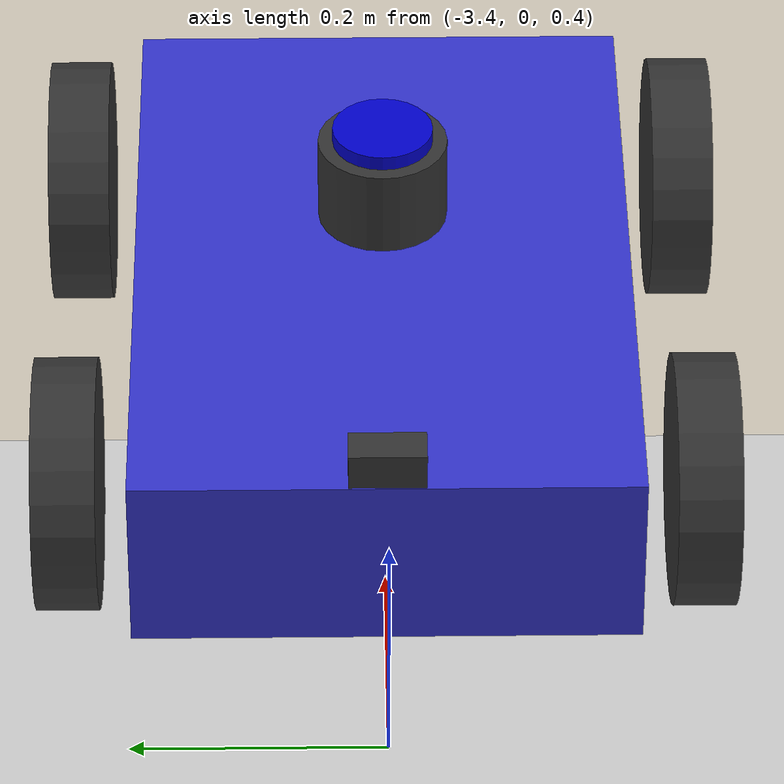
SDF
<sdf version="1.6">
 <world name="willowgarage_rover">
  <physics type="ode">
   <ode>
    <solver><type>quick</type><iters>100</iters><sor>1.0</sor></solver>
    <constraints>
     <cfm>0.0</cfm>
     <erp>0.9</erp>
     <contact_max_correcting_vel>0.1</contact_max_correcting_vel>
     <contact_surface_layer>0.0</contact_surface_layer>
    </constraints>
   </ode>
   <real_time_update_rate>0</real_time_update_rate>
   <max_step_size>0.0025</max_step_size>
  </physics>
  <include><uri>model://sun</uri></include>
  <include><uri>model://ground_plane</uri></include>
  <include><uri>model://simple_rover</uri><pose>-3 0 0.5 0 0 0</pose></include>
 </world>
</sdf>

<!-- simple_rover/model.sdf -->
<sdf version='1.6'>
  <model name="simple_rover">
    <pose>0 0 0.2 0 0 0</pose>

    <!-- Main Chassis -->
    <link name="base_link">
      <inertial>
        <mass>10.0</mass>
        <inertia>
          <ixx>0.5</ixx>
          <ixy>0</ixy>
          <ixz>0</ixz>
          <iyy>0.8</iyy>
          <iyz>0</iyz>
          <izz>0.5</izz>
        </inertia>
      </inertial>
      <collision name="chassis_collision">
        <geometry>
          <box>
            <size>0.6 0.4 0.15</size>
          </box>
        </geometry>
        <surface>
          <contact>
            <ode>
              <kp>1e5</kp>
              <kd>10.0</kd>
              <max_vel>0.01</max_vel>
              <min_depth>0.005</min_depth>
            </ode>
          </contact>
          <friction>
            <ode>
              <mu>1.0</mu>
              <mu2>1.0</mu2>
            </ode>
          </friction>
        </surface>
      </collision>
      <visual name="chassis_visual">
        <geometry>
          <box>
            <size>0.6 0.4 0.15</size>
          </box>
        </geometry>
        <material>
          <ambient>0.2 0.2 0.6 1</ambient>
          <diffuse>0.2 0.2 0.8 1</diffuse>
        </material>
      </visual>
    </link>

    <!-- IMU Sensor -->
    <link name="imu_link">
      <pose>0 0 0.1877 0 0 0</pose>
      <inertial>
        <mass>0.01</mass>
        <inertia>
          <ixx>1e-6</ixx>
          <ixy>0</ixy>
          <ixz>0</ixz>
          <iyy>1e-6</iyy>
          <iyz>0</iyz>
          <izz>1e-6</izz>
        </inertia>
      </inertial>
      <sensor name="imu_sensor" type="imu">
        <pose>0 0 0 0 0 0</pose>
        <always_on>1</always_on>
        <update_rate>200.0</update_rate>

        <imu>
          <angular_velocity>
            <x><noise type="none"/></x>
            <y><noise type="none"/></y>
            <z><noise type="none"/></z>
          </angular_velocity>
          <linear_acceleration>
            <x><noise type="none"/></x>
            <y><noise type="none"/></y>
            <z><noise type="none"/></z>
          </linear_acceleration>
        </imu>

        <plugin name="imu_plugin" filename="libgazebo_ros_imu_sensor.so">
          <topicName>/imu/data</topicName>
          <bodyName>imu_link</bodyName>
          <updateRateHZ>200.0</updateRateHZ>
          <gaussianNoise>0.0</gaussianNoise>
          <xyzOffset>0 0 0</xyzOffset>
          <rpyOffset>0 0 0</rpyOffset>
          <frameName>imu_link</frameName>
          <initialOrientationAsReference>false</initialOrientationAsReference>
        </plugin>
      </sensor>
    </link>
    <joint name="imu_joint" type="fixed">
      <parent>base_link</parent>
      <child>imu_link</child>
    </joint>

    <!-- Camera for FAST-LIVO2 (facing -X = driving direction) -->
    <link name="camera_link">
      <pose>-0.32 0 0.12 0 0 3.141593</pose>
      <inertial>
        <mass>0.1</mass>
        <inertia>
          <ixx>0.0001</ixx>
          <ixy>0</ixy>
          <ixz>0</ixz>
          <iyy>0.0001</iyy>
          <iyz>0</iyz>
          <izz>0.0001</izz>
        </inertia>
      </inertial>
      <visual name="camera_visual">
        <geometry>
          <box>
            <size>0.03 0.06 0.03</size>
          </box>
        </geometry>
        <material>
          <ambient>0.1 0.1 0.1 1</ambient>
          <diffuse>0.2 0.2 0.2 1</diffuse>
        </material>
      </visual>
      <collision name="camera_collision">
        <geometry>
          <box>
            <size>0.03 0.06 0.03</size>
          </box>
        </geometry>
      </collision>
      <sensor name="front_camera" type="camera">
        <pose>0 0 0 0 0 0</pose>
        <always_on>1</always_on>
        <update_rate>30</update_rate>
        <visualize>false</visualize>
        <camera>
          <horizontal_fov>1.5707963</horizontal_fov>
          <image>
            <width>1280</width>
            <height>960</height>
            <format>R8G8B8</format>
          </image>
          <clip>
            <near>0.1</near>
            <far>100</far>
          </clip>
        </camera>
        <plugin name="camera_plugin" filename="libgazebo_ros_camera.so">
          <alwaysOn>true</alwaysOn>
          <updateRate>30.0</updateRate>
          <cameraName>front_camera</cameraName>
          <imageTopicName>/camera/image_raw</imageTopicName>
          <cameraInfoTopicName>/camera/camera_info</cameraInfoTopicName>
          <frameName>camera_link</frameName>
          <hackBaseline>0.0</hackBaseline>
          <distortionK1>0.0</distortionK1>
          <distortionK2>0.0</distortionK2>
          <distortionK3>0.0</distortionK3>
          <distortionT1>0.0</distortionT1>
          <distortionT2>0.0</distortionT2>
        </plugin>
      </sensor>
    </link>
    <joint name="camera_joint" type="fixed">
      <parent>base_link</parent>
      <child>camera_link</child>
    </joint>

    <!-- Velodyne VLP-16 LiDAR Base -->
    <link name="velodyne_base_link">
      <pose>0 0 0.15 0 0 0</pose>
      <inertial>
        <mass>0.83</mass>
        <inertia>
          <ixx>0.000908</ixx>
          <ixy>0</ixy>
          <ixz>0</ixz>
          <iyy>0.000908</iyy>
          <iyz>0</iyz>
          <izz>0.001104</izz>
        </inertia>
      </inertial>
      <visual name="velodyne_base_visual">
        <geometry>
          <cylinder>
            <radius>0.0516</radius>
            <length>0.0717</length>
          </cylinder>
        </geometry>
        <material>
          <ambient>0.1 0.1 0.1 1</ambient>
          <diffuse>0.2 0.2 0.2 1</diffuse>
        </material>
      </visual>
      <collision name="velodyne_base_collision">
        <geometry>
          <cylinder>
            <radius>0.0516</radius>
            <length>0.0717</length>
          </cylinder>
        </geometry>
      </collision>
    </link>
    <joint name="velodyne_base_joint" type="fixed">
      <parent>base_link</parent>
      <child>velodyne_base_link</child>
    </joint>

    <!-- Velodyne VLP-16 Scan Head -->
    <link name="velodyne">
      <pose>0 0 0.1877 0 0 0</pose>
      <inertial>
        <mass>0.01</mass>
        <inertia>
          <ixx>1e-7</ixx>
          <ixy>0</ixy>
          <ixz>0</ixz>
          <iyy>1e-7</iyy>
          <iyz>0</iyz>
          <izz>1e-7</izz>
        </inertia>
      </inertial>
      <visual name="velodyne_scan_visual">
        <geometry>
          <cylinder>
            <radius>0.04</radius>
            <length>0.02</length>
          </cylinder>
        </geometry>
        <material>
          <ambient>0.0 0.0 0.8 1</ambient>
          <diffuse>0.0 0.0 0.8 1</diffuse>
        </material>
      </visual>
      <sensor type="gpu_ray" name="velodyne_vlp16">
        <pose>0 0 0 0 0 0</pose>
        <visualize>false</visualize>
        <update_rate>40</update_rate>
        <ray>
          <scan>
            <horizontal>
              <samples>1875</samples>
              <resolution>1</resolution>
              <min_angle>-3.1415926</min_angle>
              <max_angle>3.1415926</max_angle>
            </horizontal>
            <vertical>
              <samples>16</samples>
              <resolution>1</resolution>
              <min_angle>-0.261799</min_angle>
              <max_angle>0.261799</max_angle>
            </vertical>
          </scan>
          <range>
            <min>0.3</min>
            <max>131.0</max>
            <resolution>0.001</resolution>
          </range>
          <noise>
            <type>gaussian</type>
            <mean>0.0</mean>
            <stddev>0</stddev>
          </noise>
        </ray>
        <plugin name="gazebo_ros_velodyne_laser" filename="libgazebo_ros_velodyne_gpu_laser.so">
          <topicName>/velodyne_points_raw</topicName>
          <frameName>velodyne</frameName>
          <min_range>0.3</min_range>
          <max_range>130.0</max_range>
          <gaussianNoise>0</gaussianNoise>
        </plugin>
      </sensor>
    </link>
    <joint name="velodyne_scan_joint" type="fixed">
      <parent>velodyne_base_link</parent>
      <child>velodyne</child>
    </joint>

    <!-- ============== FRONT DRIVEN WHEELS (tank steer) ============== -->

    <!-- Front Left Wheel (driven by left stick) -->
    <link name="front_left_wheel">
      <pose>0.2 0.25 0 1.5708 0 0</pose>
      <inertial>
        <mass>0.5</mass>
        <inertia>
          <ixx>0.005</ixx>
          <ixy>0</ixy>
          <ixz>0</ixz>
          <iyy>0.005</iyy>
          <iyz>0</iyz>
          <izz>0.008</izz>
        </inertia>
      </inertial>
      <collision name="collision">
        <geometry>
          <cylinder>
            <radius>0.1</radius>
            <length>0.05</length>
          </cylinder>
        </geometry>
        <surface>
          <friction>
            <ode>
              <mu>1.0</mu>
              <mu2>1.0</mu2>
            </ode>
          </friction>
          <contact>
            <ode>
              <kp>1e5</kp>
              <kd>10.0</kd>
              <max_vel>0.01</max_vel>
              <min_depth>0.005</min_depth>
            </ode>
          </contact>
        </surface>
      </collision>
      <visual name="visual">
        <geometry>
          <cylinder>
            <radius>0.1</radius>
            <length>0.05</length>
          </cylinder>
        </geometry>
        <material>
          <ambient>0.1 0.1 0.1 1</ambient>
          <diffuse>0.2 0.2 0.2 1</diffuse>
        </material>
      </visual>
    </link>
    <joint name="front_left_wheel_joint" type="revolute">
      <parent>base_link</parent>
      <child>front_left_wheel</child>
      <axis>
        <xyz>0 0 1</xyz>
        <dynamics>
          <damping>1.0</damping>
          <friction>0.5</friction>
        </dynamics>
      </axis>
    </joint>

    <!-- Front Right Wheel (driven by right stick) -->
    <link name="front_right_wheel">
      <pose>0.2 -0.25 0 1.5708 0 0</pose>
      <inertial>
        <mass>0.5</mass>
        <inertia>
          <ixx>0.005</ixx>
          <ixy>0</ixy>
          <ixz>0</ixz>
          <iyy>0.005</iyy>
          <iyz>0</iyz>
          <izz>0.008</izz>
        </inertia>
      </inertial>
      <collision name="collision">
        <geometry>
          <cylinder>
            <radius>0.1</radius>
            <length>0.05</length>
          </cylinder>
        </geometry>
        <surface>
          <friction>
            <ode>
              <mu>1.0</mu>
              <mu2>1.0</mu2>
            </ode>
          </friction>
          <contact>
            <ode>
              <kp>1e5</kp>
              <kd>10.0</kd>
              <max_vel>0.01</max_vel>
              <min_depth>0.005</min_depth>
            </ode>
          </contact>
        </surface>
      </collision>
      <visual name="visual">
        <geometry>
          <cylinder>
            <radius>0.1</radius>
            <length>0.05</length>
          </cylinder>
        </geometry>
        <material>
          <ambient>0.1 0.1 0.1 1</ambient>
          <diffuse>0.2 0.2 0.2 1</diffuse>
        </material>
      </visual>
    </link>
    <joint name="front_right_wheel_joint" type="revolute">
      <parent>base_link</parent>
      <child>front_right_wheel</child>
      <axis>
        <xyz>0 0 1</xyz>
        <dynamics>
          <damping>1.0</damping>
          <friction>0.5</friction>
        </dynamics>
      </axis>
    </joint>

    <!-- ============== REAR WHEELS (free-spinning, not driven) ============== -->

    <!-- Back Left Wheel (free-spinning) -->
    <link name="back_left_wheel">
      <pose>-0.2 0.25 0 1.5708 0 0</pose>
      <inertial>
        <mass>0.5</mass>
        <inertia>
          <ixx>0.005</ixx>
          <ixy>0</ixy>
          <ixz>0</ixz>
          <iyy>0.005</iyy>
          <iyz>0</iyz>
          <izz>0.008</izz>
        </inertia>
      </inertial>
      <collision name="collision">
        <geometry>
          <cylinder>
            <radius>0.1</radius>
            <length>0.05</length>
          </cylinder>
        </geometry>
        <surface>
          <friction>
            <ode>
              <mu>1.0</mu>
              <mu2>1.0</mu2>
            </ode>
          </friction>
          <contact>
            <ode>
              <kp>1e5</kp>
              <kd>10.0</kd>
              <max_vel>0.01</max_vel>
              <min_depth>0.005</min_depth>
            </ode>
          </contact>
        </surface>
      </collision>
      <visual name="visual">
        <geometry>
          <cylinder>
            <radius>0.1</radius>
            <length>0.05</length>
          </cylinder>
        </geometry>
        <material>
          <ambient>0.1 0.1 0.1 1</ambient>
          <diffuse>0.2 0.2 0.2 1</diffuse>
        </material>
      </visual>
    </link>
    <joint name="back_left_wheel_joint" type="revolute">
      <parent>base_link</parent>
      <child>back_left_wheel</child>
      <axis>
        <xyz>0 0 1</xyz>
        <dynamics>
          <damping>1.0</damping>
          <friction>0.5</friction>
        </dynamics>
      </axis>
    </joint>

    <!-- Back Right Wheel (free-spinning) -->
    <link name="back_right_wheel">
      <pose>-0.2 -0.25 0 1.5708 0 0</pose>
      <inertial>
        <mass>0.5</mass>
        <inertia>
          <ixx>0.005</ixx>
          <ixy>0</ixy>
          <ixz>0</ixz>
          <iyy>0.005</iyy>
          <iyz>0</iyz>
          <izz>0.008</izz>
        </inertia>
      </inertial>
      <collision name="collision">
        <geometry>
          <cylinder>
            <radius>0.1</radius>
            <length>0.05</length>
          </cylinder>
        </geometry>
        <surface>
          <friction>
            <ode>
              <mu>1.0</mu>
              <mu2>1.0</mu2>
            </ode>
          </friction>
          <contact>
            <ode>
              <kp>1e5</kp>
              <kd>10.0</kd>
              <max_vel>0.01</max_vel>
              <min_depth>0.005</min_depth>
            </ode>
          </contact>
        </surface>
      </collision>
      <visual name="visual">
        <geometry>
          <cylinder>
            <radius>0.1</radius>
            <length>0.05</length>
          </cylinder>
        </geometry>
        <material>
          <ambient>0.1 0.1 0.1 1</ambient>
          <diffuse>0.2 0.2 0.2 1</diffuse>
        </material>
      </visual>
    </link>
    <joint name="back_right_wheel_joint" type="revolute">
      <parent>base_link</parent>
      <child>back_right_wheel</child>
      <axis>
        <xyz>0 0 1</xyz>
        <dynamics>
          <damping>1.0</damping>
          <friction>0.5</friction>
        </dynamics>
      </axis>
    </joint>

    <!-- ArduPilot Plugin - 4WD Arcade steering -->
    <plugin name="ardupilot_plugin" filename="libArduPilotPlugin.so">
      <fdm_addr>127.0.0.1</fdm_addr>
      <fdm_port_in>9002</fdm_port_in>
      <fdm_port_out>9003</fdm_port_out>
      <modelXYZToAirplaneXForwardZDown>0 0 0 3.141593 0 0</modelXYZToAirplaneXForwardZDown>
      <gazeboXYZToNED>0 0 0 3.141593 0 0</gazeboXYZToNED>
      <imuName>simple_rover::imu_link::imu_sensor</imuName>
      <connectionTimeoutMaxCount>50</connectionTimeoutMaxCount>

      <!-- Front Left Wheel (channel 0 = left side) -->
      <control channel="0">
        <type>VELOCITY</type>
        <offset>0</offset>
        <p_gain>1</p_gain>
        <i_gain>0</i_gain>
        <d_gain>0</d_gain>
        <i_max>0</i_max>
        <i_min>0</i_min>
        <cmd_max>100</cmd_max>
        <cmd_min>-100</cmd_min>
        <jointName>front_left_wheel_joint</jointName>
        <multiplier>50</multiplier>
      </control>

      <!-- Front Right Wheel (channel 2 = right side) -->
      <control channel="2">
        <type>VELOCITY</type>
        <offset>0</offset>
        <p_gain>1</p_gain>
        <i_gain>0</i_gain>
        <d_gain>0</d_gain>
        <i_max>0</i_max>
        <i_min>0</i_min>
        <cmd_max>100</cmd_max>
        <cmd_min>-100</cmd_min>
        <jointName>front_right_wheel_joint</jointName>
        <multiplier>50</multiplier>
      </control>

      <!-- Back Left Wheel (channel 0 = left side, same as front left) -->
      <control channel="0">
        <type>VELOCITY</type>
        <offset>0</offset>
        <p_gain>1</p_gain>
        <i_gain>0</i_gain>
        <d_gain>0</d_gain>
        <i_max>0</i_max>
        <i_min>0</i_min>
        <cmd_max>100</cmd_max>
        <cmd_min>-100</cmd_min>
        <jointName>back_left_wheel_joint</jointName>
        <multiplier>50</multiplier>
      </control>

      <!-- Back Right Wheel (channel 2 = right side, same as front right) -->
      <control channel="2">
        <type>VELOCITY</type>
        <offset>0</offset>
        <p_gain>1</p_gain>
        <i_gain>0</i_gain>
        <d_gain>0</d_gain>
        <i_max>0</i_max>
        <i_min>0</i_min>
        <cmd_max>100</cmd_max>
        <cmd_min>-100</cmd_min>
        <jointName>back_right_wheel_joint</jointName>
        <multiplier>50</multiplier>
      </control>

    </plugin>

  </model>
</sdf>
